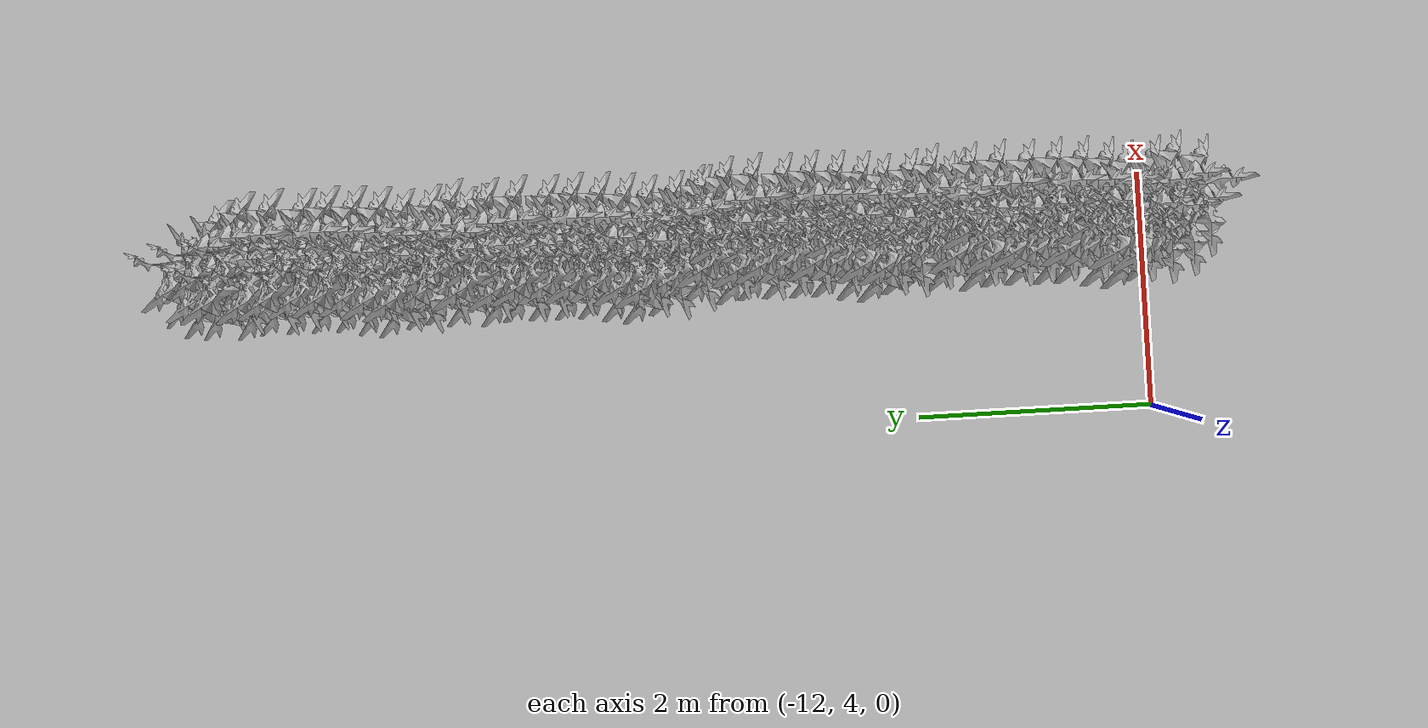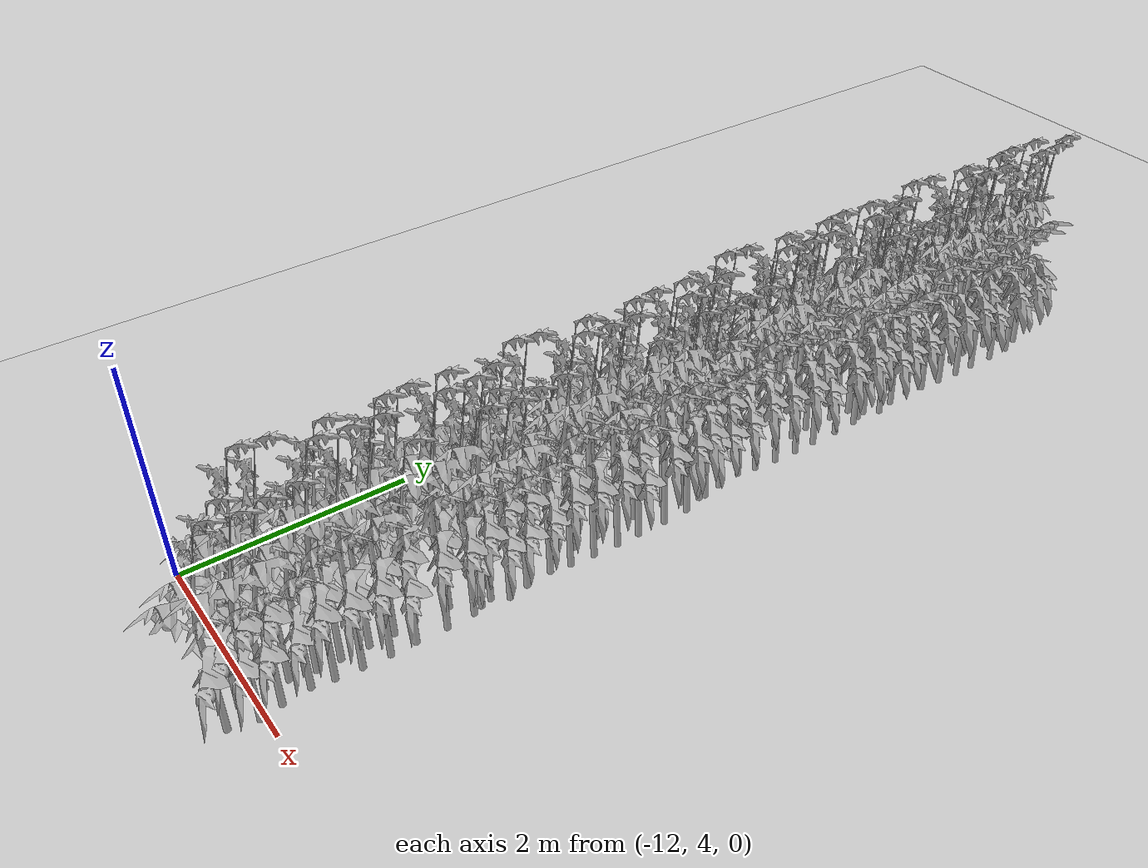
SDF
<sdf version="1.6">
 <world name="default">
  <model name="ground_plane">
   <static>1</static>
   <link name="link">
    <collision name="collision">
     <geometry><plane><normal>0 0 1</normal><size>100 100</size></plane></geometry>
     <surface>
      <contact><collide_bitmask>65535</collide_bitmask></contact>
      <friction><ode><mu>100</mu><mu2>50</mu2></ode></friction>
     </surface>
    </collision>
    <visual name="visual">
     <cast_shadows>0</cast_shadows>
     <geometry><plane><normal>0 0 1</normal><size>100 100</size></plane></geometry>
     <material>
      <script><uri>file://media/materials/scripts/gazebo.material</uri><name>Gazebo/Grey</name></script>
     </material>
    </visual>
   </link>
  </model>
  <model name="MIddle_Plant_3_13">
   <model name="MIddle_Plant_1">
    <model name="tomato_plant_big">
     <static>1</static>
     <link name="link">
      <collision name="collision">
       <pose>0 0 0 1.5708 -0 0</pose>
       <geometry><mesh><scale>0.5 0.6 0.5</scale><uri>model://stick/meshes/stick.dae</uri></mesh></geometry>
      </collision>
      <visual name="visual">
       <geometry>
        <mesh><scale>5e-06 5e-06 7e-06</scale><uri>model://tomato_plant_big/meshes/tomato-plant.dae</uri></mesh>
       </geometry>
      </visual>
     </link>
     <pose>-0.144318 -0.693607 -0 0 -0 0</pose>
    </model>
    <model name="tomato_plant_big_0">
     <static>1</static>
     <link name="link">
      <collision name="collision">
       <pose>0 0 0 1.5708 -0 0</pose>
       <geometry><mesh><scale>0.5 0.6 0.5</scale><uri>model://stick/meshes/stick.dae</uri></mesh></geometry>
      </collision>
      <visual name="visual">
       <geometry>
        <mesh><scale>5e-06 5e-06 7e-06</scale><uri>model://tomato_plant_big/meshes/tomato-plant.dae</uri></mesh>
       </geometry>
      </visual>
     </link>
     <pose>-0.11784 -0.519827 0 0 -0 0</pose>
    </model>
    <model name="tomato_plant_big_1">
     <static>1</static>
     <link name="link">
      <collision name="collision">
       <pose>0 0 0 1.5708 -0 0</pose>
       <geometry><mesh><scale>0.5 0.6 0.5</scale><uri>model://stick/meshes/stick.dae</uri></mesh></geometry>
      </collision>
      <visual name="visual">
       <geometry>
        <mesh><scale>5e-06 5e-06 7e-06</scale><uri>model://tomato_plant_big/meshes/tomato-plant.dae</uri></mesh>
       </geometry>
      </visual>
     </link>
     <pose>0.073755 -0.247584 0 0 -0 0</pose>
    </model>
    <model name="tomato_plant_big_10">
     <static>1</static>
     <link name="link">
      <collision name="collision">
       <pose>0 0 0 1.5708 -0 0</pose>
       <geometry><mesh><scale>0.5 0.6 0.5</scale><uri>model://stick/meshes/stick.dae</uri></mesh></geometry>
      </collision>
      <visual name="visual">
       <geometry>
        <mesh><scale>5e-06 5e-06 7e-06</scale><uri>model://tomato_plant_big/meshes/tomato-plant.dae</uri></mesh>
       </geometry>
      </visual>
     </link>
     <pose>0.037052 1.07094 0 0 -0 0</pose>
    </model>
    <model name="tomato_plant_big_2">
     <static>1</static>
     <link name="link">
      <collision name="collision">
       <pose>0 0 0 1.5708 -0 0</pose>
       <geometry><mesh><scale>0.5 0.6 0.5</scale><uri>model://stick/meshes/stick.dae</uri></mesh></geometry>
      </collision>
      <visual name="visual">
       <geometry>
        <mesh><scale>5e-06 5e-06 7e-06</scale><uri>model://tomato_plant_big/meshes/tomato-plant.dae</uri></mesh>
       </geometry>
      </visual>
     </link>
     <pose>-0.076926 -0.131165 0 0 -0 0</pose>
    </model>
    <model name="tomato_plant_big_3">
     <static>1</static>
     <link name="link">
      <collision name="collision">
       <pose>0 0 0 1.5708 -0 0</pose>
       <geometry><mesh><scale>0.5 0.6 0.5</scale><uri>model://stick/meshes/stick.dae</uri></mesh></geometry>
      </collision>
      <visual name="visual">
       <geometry>
        <mesh><scale>5e-06 5e-06 7e-06</scale><uri>model://tomato_plant_big/meshes/tomato-plant.dae</uri></mesh>
       </geometry>
      </visual>
     </link>
     <pose>0.093714 -0.038386 0 0 -0 0</pose>
    </model>
    <model name="tomato_plant_big_4">
     <static>1</static>
     <link name="link">
      <collision name="collision">
       <pose>0 0 0 1.5708 -0 0</pose>
       <geometry><mesh><scale>0.5 0.6 0.5</scale><uri>model://stick/meshes/stick.dae</uri></mesh></geometry>
      </collision>
      <visual name="visual">
       <geometry>
        <mesh><scale>5e-06 5e-06 7e-06</scale><uri>model://tomato_plant_big/meshes/tomato-plant.dae</uri></mesh>
       </geometry>
      </visual>
     </link>
     <pose>0.103117 0.184356 0 0 -0 0</pose>
    </model>
    <model name="tomato_plant_big_5">
     <static>1</static>
     <link name="link">
      <collision name="collision">
       <pose>0 0 0 1.5708 -0 0</pose>
       <geometry><mesh><scale>0.5 0.6 0.5</scale><uri>model://stick/meshes/stick.dae</uri></mesh></geometry>
      </collision>
      <visual name="visual">
       <geometry>
        <mesh><scale>5e-06 5e-06 7e-06</scale><uri>model://tomato_plant_big/meshes/tomato-plant.dae</uri></mesh>
       </geometry>
      </visual>
     </link>
     <pose>-0.074883 0.301479 0 0 -0 0</pose>
    </model>
    <model name="tomato_plant_big_6">
     <static>1</static>
     <link name="link">
      <collision name="collision">
       <pose>0 0 0 1.5708 -0 0</pose>
       <geometry><mesh><scale>0.5 0.6 0.5</scale><uri>model://stick/meshes/stick.dae</uri></mesh></geometry>
      </collision>
      <visual name="visual">
       <geometry>
        <mesh><scale>5e-06 5e-06 7e-06</scale><uri>model://tomato_plant_big/meshes/tomato-plant.dae</uri></mesh>
       </geometry>
      </visual>
     </link>
     <pose>-0.096921 0.484007 0 0 -0 0</pose>
    </model>
    <model name="tomato_plant_big_7">
     <static>1</static>
     <link name="link">
      <collision name="collision">
       <pose>0 0 0 1.5708 -0 0</pose>
       <geometry><mesh><scale>0.5 0.6 0.5</scale><uri>model://stick/meshes/stick.dae</uri></mesh></geometry>
      </collision>
      <visual name="visual">
       <geometry>
        <mesh><scale>5e-06 5e-06 7e-06</scale><uri>model://tomato_plant_big/meshes/tomato-plant.dae</uri></mesh>
       </geometry>
      </visual>
     </link>
     <pose>0.107491 0.653976 0 0 -0 0</pose>
    </model>
    <model name="tomato_plant_big_8">
     <static>1</static>
     <link name="link">
      <collision name="collision">
       <pose>0 0 0 1.5708 -0 0</pose>
       <geometry><mesh><scale>0.5 0.6 0.5</scale><uri>model://stick/meshes/stick.dae</uri></mesh></geometry>
      </collision>
      <visual name="visual">
       <geometry>
        <mesh><scale>5e-06 5e-06 7e-06</scale><uri>model://tomato_plant_big/meshes/tomato-plant.dae</uri></mesh>
       </geometry>
      </visual>
     </link>
     <pose>-0.07985 0.768549 0 0 -0 0</pose>
    </model>
    <model name="tomato_plant_big_9">
     <static>1</static>
     <link name="link">
      <collision name="collision">
       <pose>0 0 0 1.5708 -0 0</pose>
       <geometry><mesh><scale>0.5 0.6 0.5</scale><uri>model://stick/meshes/stick.dae</uri></mesh></geometry>
      </collision>
      <visual name="visual">
       <geometry>
        <mesh><scale>5e-06 5e-06 7e-06</scale><uri>model://tomato_plant_big/meshes/tomato-plant.dae</uri></mesh>
       </geometry>
      </visual>
     </link>
     <pose>0.098361 0.890852 0 0 -0 0</pose>
    </model>
    <model name="tomato_plant_medium">
     <static>1</static>
     <link name="link">
      <collision name="collision">
       <pose>0 0 0 1.5708 -0 0</pose>
       <geometry><mesh><scale>0.5 0.5 0.5</scale><uri>model://stick/meshes/stick.dae</uri></mesh></geometry>
      </collision>
      <visual name="visual">
       <geometry>
        <mesh><scale>5e-06 5e-06 6e-06</scale><uri>model://tomato_plant_medium/meshes/tomato-plant.dae</uri></mesh>
       </geometry>
      </visual>
     </link>
     <pose>0.056913 -1.05328 0 0 -0 0</pose>
    </model>
    <model name="tomato_plant_medium_0">
     <static>1</static>
     <link name="link">
      <collision name="collision">
       <pose>0 0 0 1.5708 -0 0</pose>
       <geometry><mesh><scale>0.5 0.5 0.5</scale><uri>model://stick/meshes/stick.dae</uri></mesh></geometry>
      </collision>
      <visual name="visual">
       <geometry>
        <mesh><scale>5e-06 5e-06 6e-06</scale><uri>model://tomato_plant_medium/meshes/tomato-plant.dae</uri></mesh>
       </geometry>
      </visual>
     </link>
     <pose>-0.092719 -0.905729 0 0 -0 0</pose>
    </model>
    <model name="tomato_plant_medium_1">
     <static>1</static>
     <link name="link">
      <collision name="collision">
       <pose>0 0 0 1.5708 -0 0</pose>
       <geometry><mesh><scale>0.5 0.5 0.5</scale><uri>model://stick/meshes/stick.dae</uri></mesh></geometry>
      </collision>
      <visual name="visual">
       <geometry>
        <mesh><scale>5e-06 5e-06 6e-06</scale><uri>model://tomato_plant_medium/meshes/tomato-plant.dae</uri></mesh>
       </geometry>
      </visual>
     </link>
     <pose>0.108962 -0.829637 0 0 -0 0</pose>
    </model>
    <model name="tomato_plant_medium_2">
     <static>1</static>
     <link name="link">
      <collision name="collision">
       <pose>0 0 0 1.5708 -0 0</pose>
       <geometry><mesh><scale>0.5 0.5 0.5</scale><uri>model://stick/meshes/stick.dae</uri></mesh></geometry>
      </collision>
      <visual name="visual">
       <geometry>
        <mesh><scale>5e-06 5e-06 6e-06</scale><uri>model://tomato_plant_medium/meshes/tomato-plant.dae</uri></mesh>
       </geometry>
      </visual>
     </link>
     <pose>0.071216 -0.652507 0 0 -0 0</pose>
    </model>
    <model name="tomato_plant_medium_3">
     <static>1</static>
     <link name="link">
      <collision name="collision">
       <pose>0 0 0 1.5708 -0 0</pose>
       <geometry><mesh><scale>0.5 0.5 0.5</scale><uri>model://stick/meshes/stick.dae</uri></mesh></geometry>
      </collision>
      <visual name="visual">
       <geometry>
        <mesh><scale>5e-06 5e-06 6e-06</scale><uri>model://tomato_plant_medium/meshes/tomato-plant.dae</uri></mesh>
       </geometry>
      </visual>
     </link>
     <pose>0.047335 -0.423046 0 0 -0 0</pose>
    </model>
    <model name="tomato_plant_medium_4">
     <static>1</static>
     <link name="link">
      <collision name="collision">
       <pose>0 0 0 1.5708 -0 0</pose>
       <geometry><mesh><scale>0.5 0.5 0.5</scale><uri>model://stick/meshes/stick.dae</uri></mesh></geometry>
      </collision>
      <visual name="visual">
       <geometry>
        <mesh><scale>5e-06 5e-06 6e-06</scale><uri>model://tomato_plant_medium/meshes/tomato-plant.dae</uri></mesh>
       </geometry>
      </visual>
     </link>
     <pose>-0.081012 -0.320324 0 0 -0 0</pose>
    </model>
    <model name="tomato_plant_medium_5">
     <static>1</static>
     <link name="link">
      <collision name="collision">
       <pose>0 0 0 1.5708 -0 0</pose>
       <geometry><mesh><scale>0.5 0.5 0.5</scale><uri>model://stick/meshes/stick.dae</uri></mesh></geometry>
      </collision>
      <visual name="visual">
       <geometry>
        <mesh><scale>5e-06 5e-06 6e-06</scale><uri>model://tomato_plant_medium/meshes/tomato-plant.dae</uri></mesh>
       </geometry>
      </visual>
     </link>
     <pose>-0.07452 0.095988 0 0 -0 0</pose>
    </model>
    <model name="tomato_plant_medium_6">
     <static>1</static>
     <link name="link">
      <collision name="collision">
       <pose>0 0 0 1.5708 -0 0</pose>
       <geometry><mesh><scale>0.5 0.5 0.5</scale><uri>model://stick/meshes/stick.dae</uri></mesh></geometry>
      </collision>
      <visual name="visual">
       <geometry>
        <mesh><scale>5e-06 5e-06 6e-06</scale><uri>model://tomato_plant_medium/meshes/tomato-plant.dae</uri></mesh>
       </geometry>
      </visual>
     </link>
     <pose>0.101424 0.395443 0 0 -0 0</pose>
    </model>
    <model name="tomato_plant_small">
     <static>1</static>
     <link name="link">
      <collision name="collision">
       <pose>0 0 0 1.5708 -0 0</pose>
       <geometry><mesh><scale>0.5 0.45 0.5</scale><uri>model://stick/meshes/stick.dae</uri></mesh></geometry>
      </collision>
      <visual name="visual">
       <geometry>
        <mesh><scale>5e-06 5e-06 5e-06</scale><uri>model://tomato_plant_small/meshes/tomato-plant.dae</uri></mesh>
       </geometry>
      </visual>
     </link>
     <pose>-0.060351 0.969512 0 0 -0 0</pose>
    </model>
    <static>0</static>
    <pose>0.040757 1.77284 0 0 -0 0</pose>
   </model>
   <model name="MIddle_Plant_2">
    <model name="MIddle_Plant_1">
     <model name="tomato_plant_big">
      <static>1</static>
      <link name="link">
       <collision name="collision">
        <pose>0 0 0 1.5708 -0 0</pose>
        <geometry><mesh><scale>0.5 0.6 0.5</scale><uri>model://stick/meshes/stick.dae</uri></mesh></geometry>
       </collision>
       <visual name="visual">
        <geometry>
         <mesh><scale>5e-06 5e-06 7e-06</scale><uri>model://tomato_plant_big/meshes/tomato-plant.dae</uri></mesh>
        </geometry>
       </visual>
      </link>
      <pose>-0.144318 -0.693607 -0 0 -0 0</pose>
     </model>
     <model name="tomato_plant_big_0">
      <static>1</static>
      <link name="link">
       <collision name="collision">
        <pose>0 0 0 1.5708 -0 0</pose>
        <geometry><mesh><scale>0.5 0.6 0.5</scale><uri>model://stick/meshes/stick.dae</uri></mesh></geometry>
       </collision>
       <visual name="visual">
        <geometry>
         <mesh><scale>5e-06 5e-06 7e-06</scale><uri>model://tomato_plant_big/meshes/tomato-plant.dae</uri></mesh>
        </geometry>
       </visual>
      </link>
      <pose>-0.11784 -0.519827 0 0 -0 0</pose>
     </model>
     <model name="tomato_plant_big_1">
      <static>1</static>
      <link name="link">
       <collision name="collision">
        <pose>0 0 0 1.5708 -0 0</pose>
        <geometry><mesh><scale>0.5 0.6 0.5</scale><uri>model://stick/meshes/stick.dae</uri></mesh></geometry>
       </collision>
       <visual name="visual">
        <geometry>
         <mesh><scale>5e-06 5e-06 7e-06</scale><uri>model://tomato_plant_big/meshes/tomato-plant.dae</uri></mesh>
        </geometry>
       </visual>
      </link>
      <pose>0.073755 -0.247584 0 0 -0 0</pose>
     </model>
     <model name="tomato_plant_big_10">
      <static>1</static>
      <link name="link">
       <collision name="collision">
        <pose>0 0 0 1.5708 -0 0</pose>
        <geometry><mesh><scale>0.5 0.6 0.5</scale><uri>model://stick/meshes/stick.dae</uri></mesh></geometry>
       </collision>
       <visual name="visual">
        <geometry>
         <mesh><scale>5e-06 5e-06 7e-06</scale><uri>model://tomato_plant_big/meshes/tomato-plant.dae</uri></mesh>
        </geometry>
       </visual>
      </link>
      <pose>0.037052 1.07094 0 0 -0 0</pose>
     </model>
     <model name="tomato_plant_big_2">
      <static>1</static>
      <link name="link">
       <collision name="collision">
        <pose>0 0 0 1.5708 -0 0</pose>
        <geometry><mesh><scale>0.5 0.6 0.5</scale><uri>model://stick/meshes/stick.dae</uri></mesh></geometry>
       </collision>
       <visual name="visual">
        <geometry>
         <mesh><scale>5e-06 5e-06 7e-06</scale><uri>model://tomato_plant_big/meshes/tomato-plant.dae</uri></mesh>
        </geometry>
       </visual>
      </link>
      <pose>-0.076926 -0.131165 0 0 -0 0</pose>
     </model>
     <model name="tomato_plant_big_3">
      <static>1</static>
      <link name="link">
       <collision name="collision">
        <pose>0 0 0 1.5708 -0 0</pose>
        <geometry><mesh><scale>0.5 0.6 0.5</scale><uri>model://stick/meshes/stick.dae</uri></mesh></geometry>
       </collision>
       <visual name="visual">
        <geometry>
         <mesh><scale>5e-06 5e-06 7e-06</scale><uri>model://tomato_plant_big/meshes/tomato-plant.dae</uri></mesh>
        </geometry>
       </visual>
      </link>
      <pose>0.093714 -0.038386 0 0 -0 0</pose>
     </model>
     <model name="tomato_plant_big_4">
      <static>1</static>
      <link name="link">
       <collision name="collision">
        <pose>0 0 0 1.5708 -0 0</pose>
        <geometry><mesh><scale>0.5 0.6 0.5</scale><uri>model://stick/meshes/stick.dae</uri></mesh></geometry>
       </collision>
       <visual name="visual">
        <geometry>
         <mesh><scale>5e-06 5e-06 7e-06</scale><uri>model://tomato_plant_big/meshes/tomato-plant.dae</uri></mesh>
        </geometry>
       </visual>
      </link>
      <pose>0.103117 0.184356 0 0 -0 0</pose>
     </model>
     <model name="tomato_plant_big_5">
      <static>1</static>
      <link name="link">
       <collision name="collision">
        <pose>0 0 0 1.5708 -0 0</pose>
        <geometry><mesh><scale>0.5 0.6 0.5</scale><uri>model://stick/meshes/stick.dae</uri></mesh></geometry>
       </collision>
       <visual name="visual">
        <geometry>
         <mesh><scale>5e-06 5e-06 7e-06</scale><uri>model://tomato_plant_big/meshes/tomato-plant.dae</uri></mesh>
        </geometry>
       </visual>
      </link>
      <pose>-0.074883 0.301479 0 0 -0 0</pose>
     </model>
     <model name="tomato_plant_big_6">
      <static>1</static>
      <link name="link">
       <collision name="collision">
        <pose>0 0 0 1.5708 -0 0</pose>
        <geometry><mesh><scale>0.5 0.6 0.5</scale><uri>model://stick/meshes/stick.dae</uri></mesh></geometry>
       </collision>
       <visual name="visual">
        <geometry>
         <mesh><scale>5e-06 5e-06 7e-06</scale><uri>model://tomato_plant_big/meshes/tomato-plant.dae</uri></mesh>
        </geometry>
       </visual>
      </link>
      <pose>-0.096921 0.484007 0 0 -0 0</pose>
     </model>
     <model name="tomato_plant_big_7">
      <static>1</static>
      <link name="link">
       <collision name="collision">
        <pose>0 0 0 1.5708 -0 0</pose>
        <geometry><mesh><scale>0.5 0.6 0.5</scale><uri>model://stick/meshes/stick.dae</uri></mesh></geometry>
       </collision>
       <visual name="visual">
        <geometry>
         <mesh><scale>5e-06 5e-06 7e-06</scale><uri>model://tomato_plant_big/meshes/tomato-plant.dae</uri></mesh>
        </geometry>
       </visual>
      </link>
      <pose>0.107491 0.653976 0 0 -0 0</pose>
     </model>
     <model name="tomato_plant_big_8">
      <static>1</static>
      <link name="link">
       <collision name="collision">
        <pose>0 0 0 1.5708 -0 0</pose>
        <geometry><mesh><scale>0.5 0.6 0.5</scale><uri>model://stick/meshes/stick.dae</uri></mesh></geometry>
       </collision>
       <visual name="visual">
        <geometry>
         <mesh><scale>5e-06 5e-06 7e-06</scale><uri>model://tomato_plant_big/meshes/tomato-plant.dae</uri></mesh>
        </geometry>
       </visual>
      </link>
      <pose>-0.07985 0.768549 0 0 -0 0</pose>
     </model>
     <model name="tomato_plant_big_9">
      <static>1</static>
      <link name="link">
       <collision name="collision">
        <pose>0 0 0 1.5708 -0 0</pose>
        <geometry><mesh><scale>0.5 0.6 0.5</scale><uri>model://stick/meshes/stick.dae</uri></mesh></geometry>
       </collision>
       <visual name="visual">
        <geometry>
         <mesh><scale>5e-06 5e-06 7e-06</scale><uri>model://tomato_plant_big/meshes/tomato-plant.dae</uri></mesh>
        </geometry>
       </visual>
      </link>
      <pose>0.098361 0.890852 0 0 -0 0</pose>
     </model>
     <model name="tomato_plant_medium">
      <static>1</static>
      <link name="link">
       <collision name="collision">
        <pose>0 0 0 1.5708 -0 0</pose>
        <geometry><mesh><scale>0.5 0.5 0.5</scale><uri>model://stick/meshes/stick.dae</uri></mesh></geometry>
       </collision>
       <visual name="visual">
        <geometry>
         <mesh><scale>5e-06 5e-06 6e-06</scale><uri>model://tomato_plant_medium/meshes/tomato-plant.dae</uri></mesh>
        </geometry>
       </visual>
      </link>
      <pose>0.056913 -1.05328 0 0 -0 0</pose>
     </model>
     <model name="tomato_plant_medium_0">
      <static>1</static>
      <link name="link">
       <collision name="collision">
        <pose>0 0 0 1.5708 -0 0</pose>
        <geometry><mesh><scale>0.5 0.5 0.5</scale><uri>model://stick/meshes/stick.dae</uri></mesh></geometry>
       </collision>
       <visual name="visual">
        <geometry>
         <mesh><scale>5e-06 5e-06 6e-06</scale><uri>model://tomato_plant_medium/meshes/tomato-plant.dae</uri></mesh>
        </geometry>
       </visual>
      </link>
      <pose>-0.092719 -0.905729 0 0 -0 0</pose>
     </model>
     <model name="tomato_plant_medium_1">
      <static>1</static>
      <link name="link">
       <collision name="collision">
        <pose>0 0 0 1.5708 -0 0</pose>
        <geometry><mesh><scale>0.5 0.5 0.5</scale><uri>model://stick/meshes/stick.dae</uri></mesh></geometry>
       </collision>
       <visual name="visual">
        <geometry>
         <mesh><scale>5e-06 5e-06 6e-06</scale><uri>model://tomato_plant_medium/meshes/tomato-plant.dae</uri></mesh>
        </geometry>
       </visual>
      </link>
      <pose>0.108962 -0.829637 0 0 -0 0</pose>
     </model>
     <model name="tomato_plant_medium_2">
      <static>1</static>
      <link name="link">
       <collision name="collision">
        <pose>0 0 0 1.5708 -0 0</pose>
        <geometry><mesh><scale>0.5 0.5 0.5</scale><uri>model://stick/meshes/stick.dae</uri></mesh></geometry>
       </collision>
       <visual name="visual">
        <geometry>
         <mesh><scale>5e-06 5e-06 6e-06</scale><uri>model://tomato_plant_medium/meshes/tomato-plant.dae</uri></mesh>
        </geometry>
       </visual>
      </link>
      <pose>0.071216 -0.652507 0 0 -0 0</pose>
     </model>
     <model name="tomato_plant_medium_3">
      <static>1</static>
      <link name="link">
       <collision name="collision">
        <pose>0 0 0 1.5708 -0 0</pose>
        <geometry><mesh><scale>0.5 0.5 0.5</scale><uri>model://stick/meshes/stick.dae</uri></mesh></geometry>
       </collision>
       <visual name="visual">
        <geometry>
         <mesh><scale>5e-06 5e-06 6e-06</scale><uri>model://tomato_plant_medium/meshes/tomato-plant.dae</uri></mesh>
        </geometry>
       </visual>
      </link>
      <pose>0.047335 -0.423046 0 0 -0 0</pose>
     </model>
     <model name="tomato_plant_medium_4">
      <static>1</static>
      <link name="link">
       <collision name="collision">
        <pose>0 0 0 1.5708 -0 0</pose>
        <geometry><mesh><scale>0.5 0.5 0.5</scale><uri>model://stick/meshes/stick.dae</uri></mesh></geometry>
       </collision>
       <visual name="visual">
        <geometry>
         <mesh><scale>5e-06 5e-06 6e-06</scale><uri>model://tomato_plant_medium/meshes/tomato-plant.dae</uri></mesh>
        </geometry>
       </visual>
      </link>
      <pose>-0.081012 -0.320324 0 0 -0 0</pose>
     </model>
     <model name="tomato_plant_medium_5">
      <static>1</static>
      <link name="link">
       <collision name="collision">
        <pose>0 0 0 1.5708 -0 0</pose>
        <geometry><mesh><scale>0.5 0.5 0.5</scale><uri>model://stick/meshes/stick.dae</uri></mesh></geometry>
       </collision>
       <visual name="visual">
        <geometry>
         <mesh><scale>5e-06 5e-06 6e-06</scale><uri>model://tomato_plant_medium/meshes/tomato-plant.dae</uri></mesh>
        </geometry>
       </visual>
      </link>
      <pose>-0.07452 0.095988 0 0 -0 0</pose>
     </model>
     <model name="tomato_plant_medium_6">
      <static>1</static>
      <link name="link">
       <collision name="collision">
        <pose>0 0 0 1.5708 -0 0</pose>
        <geometry><mesh><scale>0.5 0.5 0.5</scale><uri>model://stick/meshes/stick.dae</uri></mesh></geometry>
       </collision>
       <visual name="visual">
        <geometry>
         <mesh><scale>5e-06 5e-06 6e-06</scale><uri>model://tomato_plant_medium/meshes/tomato-plant.dae</uri></mesh>
        </geometry>
       </visual>
      </link>
      <pose>0.101424 0.395443 0 0 -0 0</pose>
     </model>
     <model name="tomato_plant_small">
      <static>1</static>
      <link name="link">
       <collision name="collision">
        <pose>0 0 0 1.5708 -0 0</pose>
        <geometry><mesh><scale>0.5 0.45 0.5</scale><uri>model://stick/meshes/stick.dae</uri></mesh></geometry>
       </collision>
       <visual name="visual">
        <geometry>
         <mesh><scale>5e-06 5e-06 5e-06</scale><uri>model://tomato_plant_small/meshes/tomato-plant.dae</uri></mesh>
        </geometry>
       </visual>
      </link>
      <pose>-0.060351 0.969512 0 0 -0 0</pose>
     </model>
     <static>0</static>
     <pose>0.763113 0.028917 0 0 -0 0</pose>
    </model>
    <model name="tomato_plant_big">
     <static>1</static>
     <link name="link">
      <collision name="collision">
       <pose>0 0 0 1.5708 -0 0</pose>
       <geometry><mesh><scale>0.5 0.6 0.5</scale><uri>model://stick/meshes/stick.dae</uri></mesh></geometry>
      </collision>
      <visual name="visual">
       <geometry>
        <mesh><scale>5e-06 5e-06 7e-06</scale><uri>model://tomato_plant_big/meshes/tomato-plant.dae</uri></mesh>
       </geometry>
      </visual>
     </link>
     <pose>0.613724 -2.69399 -0 0 -0 0</pose>
    </model>
    <model name="tomato_plant_big_0">
     <static>1</static>
     <link name="link">
      <collision name="collision">
       <pose>0 0 0 1.5708 -0 0</pose>
       <geometry><mesh><scale>0.5 0.6 0.5</scale><uri>model://stick/meshes/stick.dae</uri></mesh></geometry>
      </collision>
      <visual name="visual">
       <geometry>
        <mesh><scale>5e-06 5e-06 7e-06</scale><uri>model://tomato_plant_big/meshes/tomato-plant.dae</uri></mesh>
       </geometry>
      </visual>
     </link>
     <pose>0.640202 -2.52021 0 0 -0 0</pose>
    </model>
    <model name="tomato_plant_big_1">
     <static>1</static>
     <link name="link">
      <collision name="collision">
       <pose>0 0 0 1.5708 -0 0</pose>
       <geometry><mesh><scale>0.5 0.6 0.5</scale><uri>model://stick/meshes/stick.dae</uri></mesh></geometry>
      </collision>
      <visual name="visual">
       <geometry>
        <mesh><scale>5e-06 5e-06 7e-06</scale><uri>model://tomato_plant_big/meshes/tomato-plant.dae</uri></mesh>
       </geometry>
      </visual>
     </link>
     <pose>0.831797 -2.24797 0 0 -0 0</pose>
    </model>
    <model name="tomato_plant_big_10">
     <static>1</static>
     <link name="link">
      <collision name="collision">
       <pose>0 0 0 1.5708 -0 0</pose>
       <geometry><mesh><scale>0.5 0.6 0.5</scale><uri>model://stick/meshes/stick.dae</uri></mesh></geometry>
      </collision>
      <visual name="visual">
       <geometry>
        <mesh><scale>5e-06 5e-06 7e-06</scale><uri>model://tomato_plant_big/meshes/tomato-plant.dae</uri></mesh>
       </geometry>
      </visual>
     </link>
     <pose>0.795094 -0.929446 0 0 -0 0</pose>
    </model>
    <model name="tomato_plant_big_2">
     <static>1</static>
     <link name="link">
      <collision name="collision">
       <pose>0 0 0 1.5708 -0 0</pose>
       <geometry><mesh><scale>0.5 0.6 0.5</scale><uri>model://stick/meshes/stick.dae</uri></mesh></geometry>
      </collision>
      <visual name="visual">
       <geometry>
        <mesh><scale>5e-06 5e-06 7e-06</scale><uri>model://tomato_plant_big/meshes/tomato-plant.dae</uri></mesh>
       </geometry>
      </visual>
     </link>
     <pose>0.681116 -2.13155 0 0 -0 0</pose>
    </model>
    <model name="tomato_plant_big_3">
     <static>1</static>
     <link name="link">
      <collision name="collision">
       <pose>0 0 0 1.5708 -0 0</pose>
       <geometry><mesh><scale>0.5 0.6 0.5</scale><uri>model://stick/meshes/stick.dae</uri></mesh></geometry>
      </collision>
      <visual name="visual">
       <geometry>
        <mesh><scale>5e-06 5e-06 7e-06</scale><uri>model://tomato_plant_big/meshes/tomato-plant.dae</uri></mesh>
       </geometry>
      </visual>
     </link>
     <pose>0.851755 -2.03877 0 0 -0 0</pose>
    </model>
    <model name="tomato_plant_big_4">
     <static>1</static>
     <link name="link">
      <collision name="collision">
       <pose>0 0 0 1.5708 -0 0</pose>
       <geometry><mesh><scale>0.5 0.6 0.5</scale><uri>model://stick/meshes/stick.dae</uri></mesh></geometry>
      </collision>
      <visual name="visual">
       <geometry>
        <mesh><scale>5e-06 5e-06 7e-06</scale><uri>model://tomato_plant_big/meshes/tomato-plant.dae</uri></mesh>
       </geometry>
      </visual>
     </link>
     <pose>0.861158 -1.81603 0 0 -0 0</pose>
    </model>
    <model name="tomato_plant_big_5">
     <static>1</static>
     <link name="link">
      <collision name="collision">
       <pose>0 0 0 1.5708 -0 0</pose>
       <geometry><mesh><scale>0.5 0.6 0.5</scale><uri>model://stick/meshes/stick.dae</uri></mesh></geometry>
      </collision>
      <visual name="visual">
       <geometry>
        <mesh><scale>5e-06 5e-06 7e-06</scale><uri>model://tomato_plant_big/meshes/tomato-plant.dae</uri></mesh>
       </geometry>
      </visual>
     </link>
     <pose>0.683158 -1.69891 0 0 -0 0</pose>
    </model>
    <model name="tomato_plant_big_6">
     <static>1</static>
     <link name="link">
      <collision name="collision">
       <pose>0 0 0 1.5708 -0 0</pose>
       <geometry><mesh><scale>0.5 0.6 0.5</scale><uri>model://stick/meshes/stick.dae</uri></mesh></geometry>
      </collision>
      <visual name="visual">
       <geometry>
        <mesh><scale>5e-06 5e-06 7e-06</scale><uri>model://tomato_plant_big/meshes/tomato-plant.dae</uri></mesh>
       </geometry>
      </visual>
     </link>
     <pose>0.66112 -1.51638 0 0 -0 0</pose>
    </model>
    <model name="tomato_plant_big_7">
     <static>1</static>
     <link name="link">
      <collision name="collision">
       <pose>0 0 0 1.5708 -0 0</pose>
       <geometry><mesh><scale>0.5 0.6 0.5</scale><uri>model://stick/meshes/stick.dae</uri></mesh></geometry>
      </collision>
      <visual name="visual">
       <geometry>
        <mesh><scale>5e-06 5e-06 7e-06</scale><uri>model://tomato_plant_big/meshes/tomato-plant.dae</uri></mesh>
       </geometry>
      </visual>
     </link>
     <pose>0.865532 -1.34641 0 0 -0 0</pose>
    </model>
    <model name="tomato_plant_big_8">
     <static>1</static>
     <link name="link">
      <collision name="collision">
       <pose>0 0 0 1.5708 -0 0</pose>
       <geometry><mesh><scale>0.5 0.6 0.5</scale><uri>model://stick/meshes/stick.dae</uri></mesh></geometry>
      </collision>
      <visual name="visual">
       <geometry>
        <mesh><scale>5e-06 5e-06 7e-06</scale><uri>model://tomato_plant_big/meshes/tomato-plant.dae</uri></mesh>
       </geometry>
      </visual>
     </link>
     <pose>0.678192 -1.23184 0 0 -0 0</pose>
    </model>
    <model name="tomato_plant_big_9">
     <static>1</static>
     <link name="link">
      <collision name="collision">
       <pose>0 0 0 1.5708 -0 0</pose>
       <geometry><mesh><scale>0.5 0.6 0.5</scale><uri>model://stick/meshes/stick.dae</uri></mesh></geometry>
      </collision>
      <visual name="visual">
       <geometry>
        <mesh><scale>5e-06 5e-06 7e-06</scale><uri>model://tomato_plant_big/meshes/tomato-plant.dae</uri></mesh>
       </geometry>
      </visual>
     </link>
     <pose>0.856402 -1.10953 0 0 -0 0</pose>
    </model>
    <model name="tomato_plant_medium">
     <static>1</static>
     <link name="link">
      <collision name="collision">
       <pose>0 0 0 1.5708 -0 0</pose>
       <geometry><mesh><scale>0.5 0.5 0.5</scale><uri>model://stick/meshes/stick.dae</uri></mesh></geometry>
      </collision>
      <visual name="visual">
       <geometry>
        <mesh><scale>5e-06 5e-06 6e-06</scale><uri>model://tomato_plant_medium/meshes/tomato-plant.dae</uri></mesh>
       </geometry>
      </visual>
     </link>
     <pose>0.814955 -3.05367 0 0 -0 0</pose>
    </model>
    <model name="tomato_plant_medium_0">
     <static>1</static>
     <link name="link">
      <collision name="collision">
       <pose>0 0 0 1.5708 -0 0</pose>
       <geometry><mesh><scale>0.5 0.5 0.5</scale><uri>model://stick/meshes/stick.dae</uri></mesh></geometry>
      </collision>
      <visual name="visual">
       <geometry>
        <mesh><scale>5e-06 5e-06 6e-06</scale><uri>model://tomato_plant_medium/meshes/tomato-plant.dae</uri></mesh>
       </geometry>
      </visual>
     </link>
     <pose>0.665322 -2.90611 0 0 -0 0</pose>
    </model>
    <model name="tomato_plant_medium_1">
     <static>1</static>
     <link name="link">
      <collision name="collision">
       <pose>0 0 0 1.5708 -0 0</pose>
       <geometry><mesh><scale>0.5 0.5 0.5</scale><uri>model://stick/meshes/stick.dae</uri></mesh></geometry>
      </collision>
      <visual name="visual">
       <geometry>
        <mesh><scale>5e-06 5e-06 6e-06</scale><uri>model://tomato_plant_medium/meshes/tomato-plant.dae</uri></mesh>
       </geometry>
      </visual>
     </link>
     <pose>0.867004 -2.83002 0 0 -0 0</pose>
    </model>
    <model name="tomato_plant_medium_2">
     <static>1</static>
     <link name="link">
      <collision name="collision">
       <pose>0 0 0 1.5708 -0 0</pose>
       <geometry><mesh><scale>0.5 0.5 0.5</scale><uri>model://stick/meshes/stick.dae</uri></mesh></geometry>
      </collision>
      <visual name="visual">
       <geometry>
        <mesh><scale>5e-06 5e-06 6e-06</scale><uri>model://tomato_plant_medium/meshes/tomato-plant.dae</uri></mesh>
       </geometry>
      </visual>
     </link>
     <pose>0.829257 -2.65289 0 0 -0 0</pose>
    </model>
    <model name="tomato_plant_medium_3">
     <static>1</static>
     <link name="link">
      <collision name="collision">
       <pose>0 0 0 1.5708 -0 0</pose>
       <geometry><mesh><scale>0.5 0.5 0.5</scale><uri>model://stick/meshes/stick.dae</uri></mesh></geometry>
      </collision>
      <visual name="visual">
       <geometry>
        <mesh><scale>5e-06 5e-06 6e-06</scale><uri>model://tomato_plant_medium/meshes/tomato-plant.dae</uri></mesh>
       </geometry>
      </visual>
     </link>
     <pose>0.805376 -2.42343 0 0 -0 0</pose>
    </model>
    <model name="tomato_plant_medium_4">
     <static>1</static>
     <link name="link">
      <collision name="collision">
       <pose>0 0 0 1.5708 -0 0</pose>
       <geometry><mesh><scale>0.5 0.5 0.5</scale><uri>model://stick/meshes/stick.dae</uri></mesh></geometry>
      </collision>
      <visual name="visual">
       <geometry>
        <mesh><scale>5e-06 5e-06 6e-06</scale><uri>model://tomato_plant_medium/meshes/tomato-plant.dae</uri></mesh>
       </geometry>
      </visual>
     </link>
     <pose>0.67703 -2.32071 0 0 -0 0</pose>
    </model>
    <model name="tomato_plant_medium_5">
     <static>1</static>
     <link name="link">
      <collision name="collision">
       <pose>0 0 0 1.5708 -0 0</pose>
       <geometry><mesh><scale>0.5 0.5 0.5</scale><uri>model://stick/meshes/stick.dae</uri></mesh></geometry>
      </collision>
      <visual name="visual">
       <geometry>
        <mesh><scale>5e-06 5e-06 6e-06</scale><uri>model://tomato_plant_medium/meshes/tomato-plant.dae</uri></mesh>
       </geometry>
      </visual>
     </link>
     <pose>0.683522 -1.9044 0 0 -0 0</pose>
    </model>
    <model name="tomato_plant_medium_6">
     <static>1</static>
     <link name="link">
      <collision name="collision">
       <pose>0 0 0 1.5708 -0 0</pose>
       <geometry><mesh><scale>0.5 0.5 0.5</scale><uri>model://stick/meshes/stick.dae</uri></mesh></geometry>
      </collision>
      <visual name="visual">
       <geometry>
        <mesh><scale>5e-06 5e-06 6e-06</scale><uri>model://tomato_plant_medium/meshes/tomato-plant.dae</uri></mesh>
       </geometry>
      </visual>
     </link>
     <pose>0.859466 -1.60494 0 0 -0 0</pose>
    </model>
    <model name="tomato_plant_small">
     <static>1</static>
     <link name="link">
      <collision name="collision">
       <pose>0 0 0 1.5708 -0 0</pose>
       <geometry><mesh><scale>0.5 0.45 0.5</scale><uri>model://stick/meshes/stick.dae</uri></mesh></geometry>
      </collision>
      <visual name="visual">
       <geometry>
        <mesh><scale>5e-06 5e-06 5e-06</scale><uri>model://tomato_plant_small/meshes/tomato-plant.dae</uri></mesh>
       </geometry>
      </visual>
     </link>
     <pose>0.697691 -1.03087 0 0 -0 0</pose>
    </model>
    <static>0</static>
    <pose>-0.78485 5.73439 0 0 -0 0</pose>
   </model>
   <model name="tomato_plant_big">
    <static>1</static>
    <link name="link">
     <collision name="collision">
      <pose>0 0 0 1.5708 -0 0</pose>
      <geometry><mesh><scale>0.5 0.6 0.5</scale><uri>model://stick/meshes/stick.dae</uri></mesh></geometry>
     </collision>
     <visual name="visual">
      <geometry>
       <mesh><scale>5e-06 5e-06 7e-06</scale><uri>model://tomato_plant_big/meshes/tomato-plant.dae</uri></mesh>
      </geometry>
     </visual>
    </link>
    <pose>-0.108632 -0.950068 -0 0 -0 0</pose>
   </model>
   <model name="tomato_plant_big_0">
    <static>1</static>
    <link name="link">
     <collision name="collision">
      <pose>0 0 0 1.5708 -0 0</pose>
      <geometry><mesh><scale>0.5 0.6 0.5</scale><uri>model://stick/meshes/stick.dae</uri></mesh></geometry>
     </collision>
     <visual name="visual">
      <geometry>
       <mesh><scale>5e-06 5e-06 7e-06</scale><uri>model://tomato_plant_big/meshes/tomato-plant.dae</uri></mesh>
      </geometry>
     </visual>
    </link>
    <pose>-0.082154 -0.776288 0 0 -0 0</pose>
   </model>
   <model name="tomato_plant_big_1">
    <static>1</static>
    <link name="link">
     <collision name="collision">
      <pose>0 0 0 1.5708 -0 0</pose>
      <geometry><mesh><scale>0.5 0.6 0.5</scale><uri>model://stick/meshes/stick.dae</uri></mesh></geometry>
     </collision>
     <visual name="visual">
      <geometry>
       <mesh><scale>5e-06 5e-06 7e-06</scale><uri>model://tomato_plant_big/meshes/tomato-plant.dae</uri></mesh>
      </geometry>
     </visual>
    </link>
    <pose>0.109441 -0.504045 0 0 -0 0</pose>
   </model>
   <model name="tomato_plant_big_10">
    <static>1</static>
    <link name="link">
     <collision name="collision">
      <pose>0 0 0 1.5708 -0 0</pose>
      <geometry><mesh><scale>0.5 0.6 0.5</scale><uri>model://stick/meshes/stick.dae</uri></mesh></geometry>
     </collision>
     <visual name="visual">
      <geometry>
       <mesh><scale>5e-06 5e-06 7e-06</scale><uri>model://tomato_plant_big/meshes/tomato-plant.dae</uri></mesh>
      </geometry>
     </visual>
    </link>
    <pose>0.072738 0.814477 0 0 -0 0</pose>
   </model>
   <model name="tomato_plant_big_2">
    <static>1</static>
    <link name="link">
     <collision name="collision">
      <pose>0 0 0 1.5708 -0 0</pose>
      <geometry><mesh><scale>0.5 0.6 0.5</scale><uri>model://stick/meshes/stick.dae</uri></mesh></geometry>
     </collision>
     <visual name="visual">
      <geometry>
       <mesh><scale>5e-06 5e-06 7e-06</scale><uri>model://tomato_plant_big/meshes/tomato-plant.dae</uri></mesh>
      </geometry>
     </visual>
    </link>
    <pose>-0.04124 -0.387626 0 0 -0 0</pose>
   </model>
   <model name="tomato_plant_big_3">
    <static>1</static>
    <link name="link">
     <collision name="collision">
      <pose>0 0 0 1.5708 -0 0</pose>
      <geometry><mesh><scale>0.5 0.6 0.5</scale><uri>model://stick/meshes/stick.dae</uri></mesh></geometry>
     </collision>
     <visual name="visual">
      <geometry>
       <mesh><scale>5e-06 5e-06 7e-06</scale><uri>model://tomato_plant_big/meshes/tomato-plant.dae</uri></mesh>
      </geometry>
     </visual>
    </link>
    <pose>0.129399 -0.294847 0 0 -0 0</pose>
   </model>
   <model name="tomato_plant_big_4">
    <static>1</static>
    <link name="link">
     <collision name="collision">
      <pose>0 0 0 1.5708 -0 0</pose>
      <geometry><mesh><scale>0.5 0.6 0.5</scale><uri>model://stick/meshes/stick.dae</uri></mesh></geometry>
     </collision>
     <visual name="visual">
      <geometry>
       <mesh><scale>5e-06 5e-06 7e-06</scale><uri>model://tomato_plant_big/meshes/tomato-plant.dae</uri></mesh>
      </geometry>
     </visual>
    </link>
    <pose>0.138802 -0.072105 0 0 -0 0</pose>
   </model>
   <model name="tomato_plant_big_5">
    <static>1</static>
    <link name="link">
     <collision name="collision">
      <pose>0 0 0 1.5708 -0 0</pose>
      <geometry><mesh><scale>0.5 0.6 0.5</scale><uri>model://stick/meshes/stick.dae</uri></mesh></geometry>
     </collision>
     <visual name="visual">
      <geometry>
       <mesh><scale>5e-06 5e-06 7e-06</scale><uri>model://tomato_plant_big/meshes/tomato-plant.dae</uri></mesh>
      </geometry>
     </visual>
    </link>
    <pose>-0.039198 0.045018 0 0 -0 0</pose>
   </model>
   <model name="tomato_plant_big_6">
    <static>1</static>
    <link name="link">
     <collision name="collision">
      <pose>0 0 0 1.5708 -0 0</pose>
      <geometry><mesh><scale>0.5 0.6 0.5</scale><uri>model://stick/meshes/stick.dae</uri></mesh></geometry>
     </collision>
     <visual name="visual">
      <geometry>
       <mesh><scale>5e-06 5e-06 7e-06</scale><uri>model://tomato_plant_big/meshes/tomato-plant.dae</uri></mesh>
      </geometry>
     </visual>
    </link>
    <pose>-0.061236 0.227546 0 0 -0 0</pose>
   </model>
   <model name="tomato_plant_big_7">
    <static>1</static>
    <link name="link">
     <collision name="collision">
      <pose>0 0 0 1.5708 -0 0</pose>
      <geometry><mesh><scale>0.5 0.6 0.5</scale><uri>model://stick/meshes/stick.dae</uri></mesh></geometry>
     </collision>
     <visual name="visual">
      <geometry>
       <mesh><scale>5e-06 5e-06 7e-06</scale><uri>model://tomato_plant_big/meshes/tomato-plant.dae</uri></mesh>
      </geometry>
     </visual>
    </link>
    <pose>0.143176 0.397515 0 0 -0 0</pose>
   </model>
   <model name="tomato_plant_big_8">
    <static>1</static>
    <link name="link">
     <collision name="collision">
      <pose>0 0 0 1.5708 -0 0</pose>
      <geometry><mesh><scale>0.5 0.6 0.5</scale><uri>model://stick/meshes/stick.dae</uri></mesh></geometry>
     </collision>
     <visual name="visual">
      <geometry>
       <mesh><scale>5e-06 5e-06 7e-06</scale><uri>model://tomato_plant_big/meshes/tomato-plant.dae</uri></mesh>
      </geometry>
     </visual>
    </link>
    <pose>-0.044164 0.512088 0 0 -0 0</pose>
   </model>
   <model name="tomato_plant_big_9">
    <static>1</static>
    <link name="link">
     <collision name="collision">
      <pose>0 0 0 1.5708 -0 0</pose>
      <geometry><mesh><scale>0.5 0.6 0.5</scale><uri>model://stick/meshes/stick.dae</uri></mesh></geometry>
     </collision>
     <visual name="visual">
      <geometry>
       <mesh><scale>5e-06 5e-06 7e-06</scale><uri>model://tomato_plant_big/meshes/tomato-plant.dae</uri></mesh>
      </geometry>
     </visual>
    </link>
    <pose>0.134046 0.634391 0 0 -0 0</pose>
   </model>
   <model name="tomato_plant_medium">
    <static>1</static>
    <link name="link">
     <collision name="collision">
      <pose>0 0 0 1.5708 -0 0</pose>
      <geometry><mesh><scale>0.5 0.5 0.5</scale><uri>model://stick/meshes/stick.dae</uri></mesh></geometry>
     </collision>
     <visual name="visual">
      <geometry>
       <mesh><scale>5e-06 5e-06 6e-06</scale><uri>model://tomato_plant_medium/meshes/tomato-plant.dae</uri></mesh>
      </geometry>
     </visual>
    </link>
    <pose>0.092599 -1.30974 0 0 -0 0</pose>
   </model>
   <model name="tomato_plant_medium_0">
    <static>1</static>
    <link name="link">
     <collision name="collision">
      <pose>0 0 0 1.5708 -0 0</pose>
      <geometry><mesh><scale>0.5 0.5 0.5</scale><uri>model://stick/meshes/stick.dae</uri></mesh></geometry>
     </collision>
     <visual name="visual">
      <geometry>
       <mesh><scale>5e-06 5e-06 6e-06</scale><uri>model://tomato_plant_medium/meshes/tomato-plant.dae</uri></mesh>
      </geometry>
     </visual>
    </link>
    <pose>-0.057034 -1.16219 0 0 -0 0</pose>
   </model>
   <model name="tomato_plant_medium_1">
    <static>1</static>
    <link name="link">
     <collision name="collision">
      <pose>0 0 0 1.5708 -0 0</pose>
      <geometry><mesh><scale>0.5 0.5 0.5</scale><uri>model://stick/meshes/stick.dae</uri></mesh></geometry>
     </collision>
     <visual name="visual">
      <geometry>
       <mesh><scale>5e-06 5e-06 6e-06</scale><uri>model://tomato_plant_medium/meshes/tomato-plant.dae</uri></mesh>
      </geometry>
     </visual>
    </link>
    <pose>0.144648 -1.0861 0 0 -0 0</pose>
   </model>
   <model name="tomato_plant_medium_2">
    <static>1</static>
    <link name="link">
     <collision name="collision">
      <pose>0 0 0 1.5708 -0 0</pose>
      <geometry><mesh><scale>0.5 0.5 0.5</scale><uri>model://stick/meshes/stick.dae</uri></mesh></geometry>
     </collision>
     <visual name="visual">
      <geometry>
       <mesh><scale>5e-06 5e-06 6e-06</scale><uri>model://tomato_plant_medium/meshes/tomato-plant.dae</uri></mesh>
      </geometry>
     </visual>
    </link>
    <pose>0.106901 -0.908968 0 0 -0 0</pose>
   </model>
   <model name="tomato_plant_medium_3">
    <static>1</static>
    <link name="link">
     <collision name="collision">
      <pose>0 0 0 1.5708 -0 0</pose>
      <geometry><mesh><scale>0.5 0.5 0.5</scale><uri>model://stick/meshes/stick.dae</uri></mesh></geometry>
     </collision>
     <visual name="visual">
      <geometry>
       <mesh><scale>5e-06 5e-06 6e-06</scale><uri>model://tomato_plant_medium/meshes/tomato-plant.dae</uri></mesh>
      </geometry>
     </visual>
    </link>
    <pose>0.08302 -0.679508 0 0 -0 0</pose>
   </model>
   <model name="tomato_plant_medium_4">
    <static>1</static>
    <link name="link">
     <collision name="collision">
      <pose>0 0 0 1.5708 -0 0</pose>
      <geometry><mesh><scale>0.5 0.5 0.5</scale><uri>model://stick/meshes/stick.dae</uri></mesh></geometry>
     </collision>
     <visual name="visual">
      <geometry>
       <mesh><scale>5e-06 5e-06 6e-06</scale><uri>model://tomato_plant_medium/meshes/tomato-plant.dae</uri></mesh>
      </geometry>
     </visual>
    </link>
    <pose>-0.045326 -0.576785 0 0 -0 0</pose>
   </model>
   <model name="tomato_plant_medium_5">
    <static>1</static>
    <link name="link">
     <collision name="collision">
      <pose>0 0 0 1.5708 -0 0</pose>
      <geometry><mesh><scale>0.5 0.5 0.5</scale><uri>model://stick/meshes/stick.dae</uri></mesh></geometry>
     </collision>
     <visual name="visual">
      <geometry>
       <mesh><scale>5e-06 5e-06 6e-06</scale><uri>model://tomato_plant_medium/meshes/tomato-plant.dae</uri></mesh>
      </geometry>
     </visual>
    </link>
    <pose>-0.038834 -0.160473 0 0 -0 0</pose>
   </model>
   <model name="tomato_plant_medium_6">
    <static>1</static>
    <link name="link">
     <collision name="collision">
      <pose>0 0 0 1.5708 -0 0</pose>
      <geometry><mesh><scale>0.5 0.5 0.5</scale><uri>model://stick/meshes/stick.dae</uri></mesh></geometry>
     </collision>
     <visual name="visual">
      <geometry>
       <mesh><scale>5e-06 5e-06 6e-06</scale><uri>model://tomato_plant_medium/meshes/tomato-plant.dae</uri></mesh>
      </geometry>
     </visual>
    </link>
    <pose>0.13711 0.138982 0 0 -0 0</pose>
   </model>
   <model name="tomato_plant_small">
    <static>1</static>
    <link name="link">
     <collision name="collision">
      <pose>0 0 0 1.5708 -0 0</pose>
      <geometry><mesh><scale>0.5 0.45 0.5</scale><uri>model://stick/meshes/stick.dae</uri></mesh></geometry>
     </collision>
     <visual name="visual">
      <geometry>
       <mesh><scale>5e-06 5e-06 5e-06</scale><uri>model://tomato_plant_small/meshes/tomato-plant.dae</uri></mesh>
      </geometry>
     </visual>
    </link>
    <pose>-0.024665 0.713051 0 0 -0 0</pose>
   </model>
   <static>0</static>
   <pose>-10.341 5.03082 0 0 -0 0</pose>
  </model>
 </world>
</sdf>
